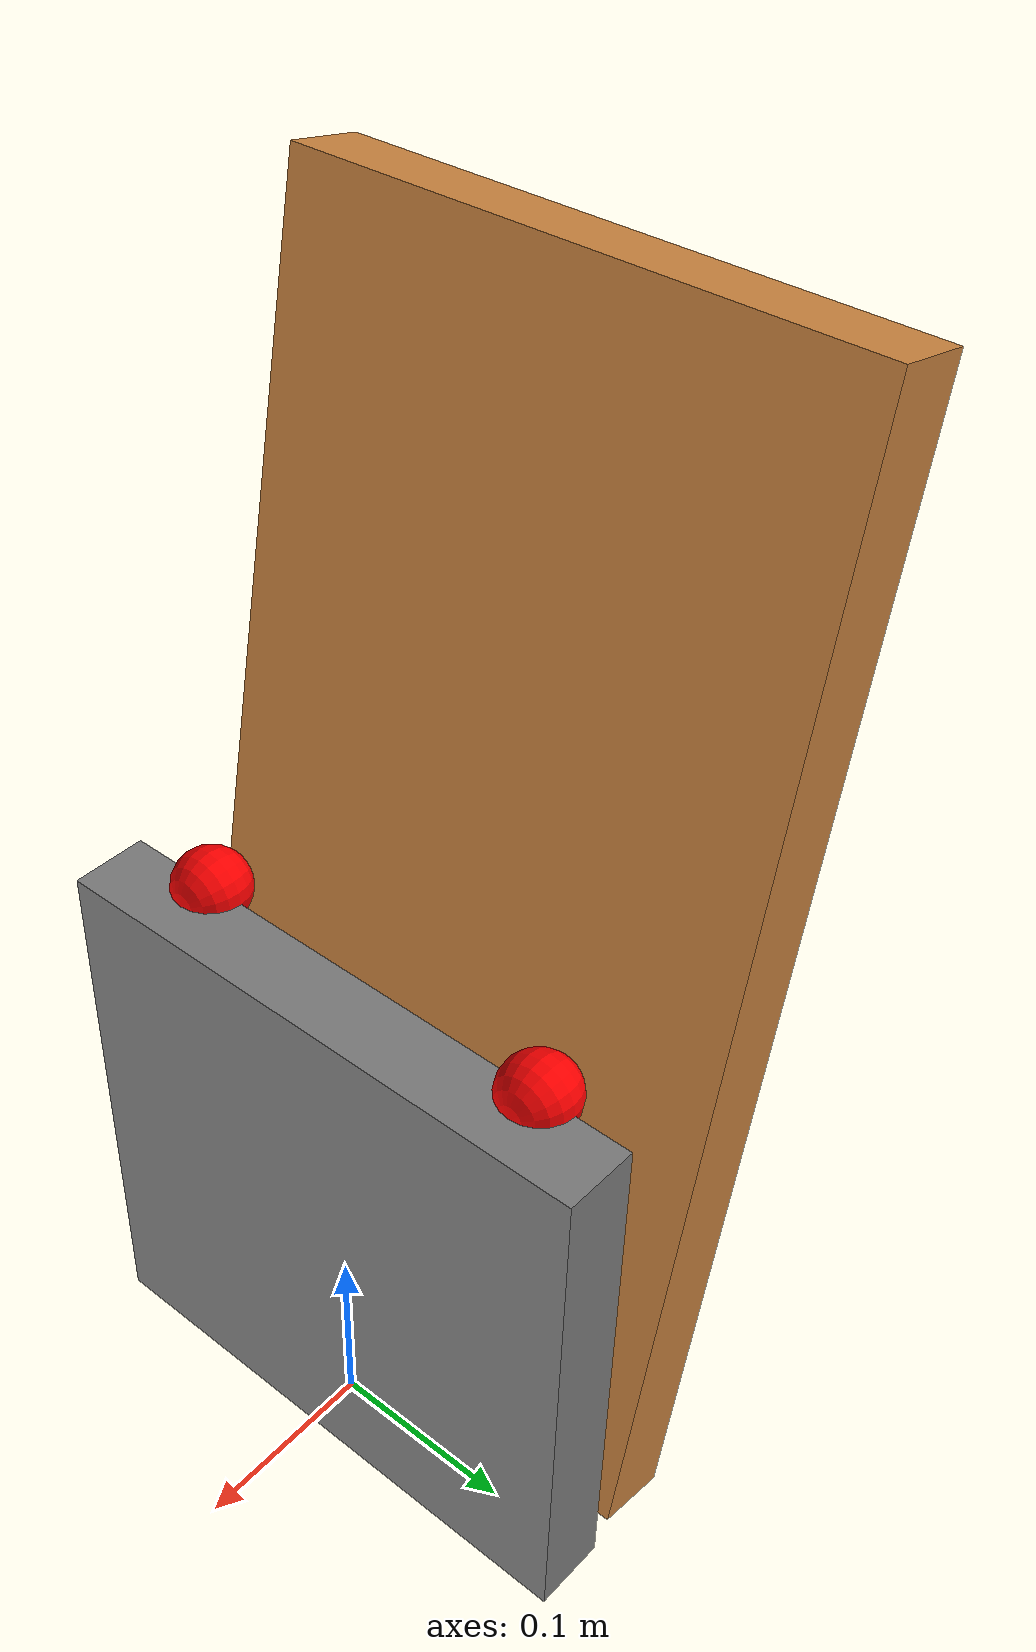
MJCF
<mujoco model="foldchair">
  <compiler angle="radian" autolimits="true"/>

  <default>
    <joint damping="0.1" frictionloss="0.01"/>
  </default>

  <asset>
    <material name="foldchair_seat_metal" rgba="0.5 0.5 0.5 1"/>
    <material name="wood" rgba="0.8 0.52 0.25 1"/>
  </asset>

  <worldbody>
    <body name="foldchair" pos="0 0 0">
      <freejoint name="foldchair_root"/>
      <body name="backrest_panel" quat="0.99499 0 -0.1 0">
        <geom type="box" size="0.02 0.15 0.3" pos="-0.05 0 0.3" material="wood"/>
      </body>

      <body name="seat_link" pos="0 0 0" quat="0.85 0 -0.86 0">
          <joint name="foldchair_joint" type="hinge" axis="0 1 0" pos="0 0 0" damping="50" range="-0.1 1.57"/>
          <geom name="seat_geom" type="box" size="0.15 0.15 0.02" pos="0.13 0.0 0.0" material="foldchair_seat_metal"/>
          <site name="left_hand_contact" pos="0.28 -0.1 0.02  " size="0.02" type="sphere" rgba="1 0 0 1"/>
          <site name="right_hand_contact" pos="0.28 0.1 0.02" size="0.02" type="sphere" rgba="1 0 0 1"/>
      </body>
    </body>
 </worldbody>

  <actuator>
    <position name="seat_actuator" joint="foldchair_joint" ctrlrange="-90 90"/>
  </actuator>
</mujoco>
